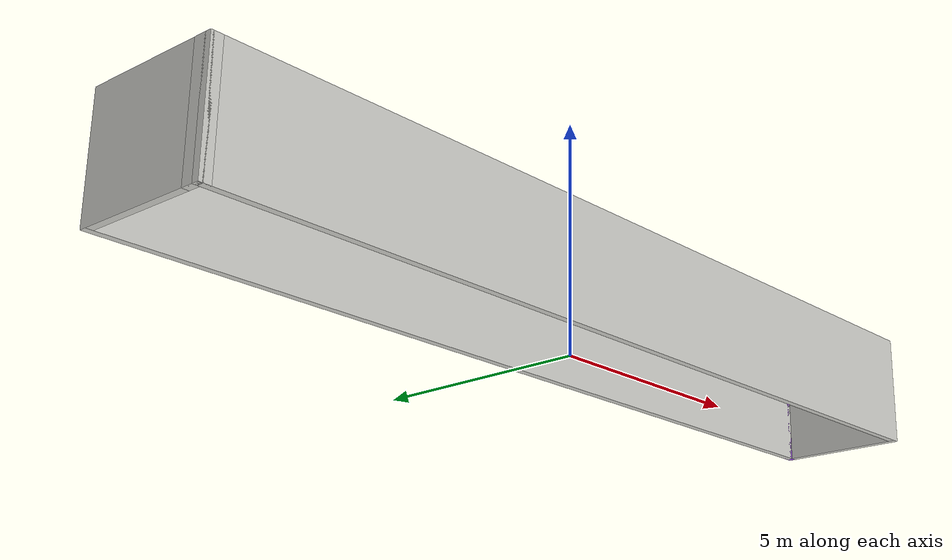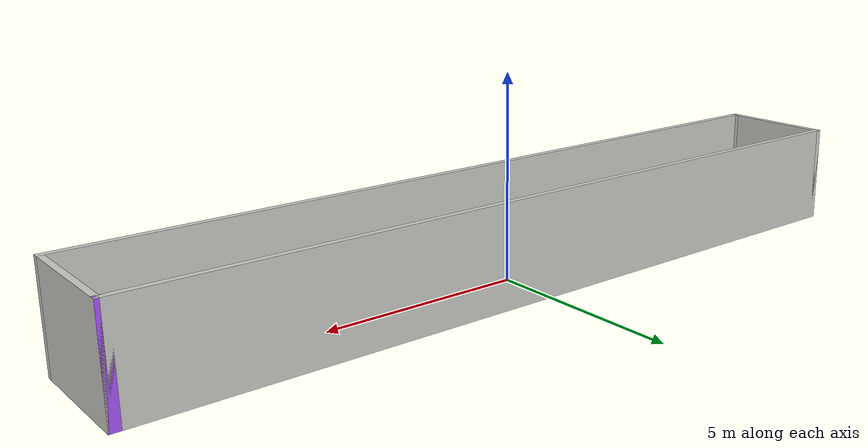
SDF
<?xml version='1.0'?>
<sdf version='1.6'>
  <model name='dqn'>
    <pose frame=''>0.084237 0.035985 0 0 -0 0</pose>
    <link name='Wall_10'>
      <collision name='Wall_10_Collision'>
        <geometry>
          <box>
            <size>20.25 0.15 2.5</size>
          </box>
        </geometry>
        <pose frame=''>0 0 1.25 0 -0 0</pose>
      </collision>
      <visual name='Wall_10_Visual'>
        <pose frame=''>0 0 1.25 0 -0 0</pose>
        <geometry>
          <box>
            <size>20.25 0.15 2.5</size>
          </box>
        </geometry>
        <material>
          <script>
            <uri>file://media/materials/scripts/gazebo.material</uri>
            <name>Gazebo/CeilingTiled</name>
          </script>
          <ambient>0.666667 0.333333 1 1</ambient>
        </material>
        <meta>
          <layer>0</layer>
        </meta>
      </visual>
      <pose frame=''>-0.05 1.425 0 0 -0 0</pose>
    </link>
    <link name='Wall_11'>
      <collision name='Wall_11_Collision'>
        <geometry>
          <box>
            <size>0.25 0.15 2.5</size>
          </box>
        </geometry>
        <pose frame=''>0 0 1.25 0 -0 0</pose>
      </collision>
      <visual name='Wall_11_Visual'>
        <pose frame=''>0 0 1.25 0 -0 0</pose>
        <geometry>
          <box>
            <size>0.25 0.15 2.5</size>
          </box>
        </geometry>
        <material>
          <script>
            <uri>file://media/materials/scripts/gazebo.material</uri>
            <name>Gazebo/Grey</name>
          </script>
          <ambient>0.666667 0.333333 1 1</ambient>
        </material>
        <meta>
          <layer>0</layer>
        </meta>
      </visual>
      <pose frame=''>10.05 1.425 0 0 -0 0</pose>
    </link>
    <link name='Wall_12'>
      <collision name='Wall_12_Collision'>
        <geometry>
          <box>
            <size>3 0.15 2.5</size>
          </box>
        </geometry>
        <pose frame=''>0 0 1.25 0 -0 0</pose>
      </collision>
      <visual name='Wall_12_Visual'>
        <pose frame=''>0 0 1.25 0 -0 0</pose>
        <geometry>
          <box>
            <size>3 0.15 2.5</size>
          </box>
        </geometry>
        <material>
          <script>
            <uri>file://media/materials/scripts/gazebo.material</uri>
            <name>Gazebo/CeilingTiled</name>
          </script>
          <ambient>0.666667 0.333333 1 1</ambient>
        </material>
        <meta>
          <layer>0</layer>
        </meta>
      </visual>
      <pose frame=''>10.1 0 0 0 -0 -1.5708</pose>
    </link>
    <link name='Wall_13'>
      <collision name='Wall_13_Collision'>
        <geometry>
          <box>
            <size>20.25 0.15 2.5</size>
          </box>
        </geometry>
        <pose frame=''>0 0 1.25 0 -0 0</pose>
      </collision>
      <visual name='Wall_13_Visual'>
        <pose frame=''>0 0 1.25 0 -0 0</pose>
        <geometry>
          <box>
            <size>20.25 0.15 2.5</size>
          </box>
        </geometry>
        <material>
          <script>
            <uri>file://media/materials/scripts/gazebo.material</uri>
            <name>Gazebo/CeilingTiled</name>
          </script>
          <ambient>0.666667 0.333333 1 1</ambient>
        </material>
        <meta>
          <layer>0</layer>
        </meta>
      </visual>
      <pose frame=''>0.05 -1.425 0 0 -0 3.14159</pose>
    </link>
    <link name='Wall_14'>
      <collision name='Wall_14_Collision'>
        <geometry>
          <box>
            <size>0.25 0.15 2.5</size>
          </box>
        </geometry>
        <pose frame=''>0 0 1.25 0 -0 0</pose>
      </collision>
      <visual name='Wall_14_Visual'>
        <pose frame=''>0 0 1.25 0 -0 0</pose>
        <geometry>
          <box>
            <size>0.25 0.15 2.5</size>
          </box>
        </geometry>
        <material>
          <script>
            <uri>file://media/materials/scripts/gazebo.material</uri>
            <name>Gazebo/CeilingTiled</name>
          </script>
          <ambient>0.666667 0.333333 1 1</ambient>
        </material>
        <meta>
          <layer>0</layer>
        </meta>
      </visual>
      <pose frame=''>-10.05 -1.425 0 0 -0 3.14159</pose>
    </link>
    <link name='Wall_15'>
      <collision name='Wall_15_Collision'>
        <geometry>
          <box>
            <size>0.4 0.15 2.5</size>
          </box>
        </geometry>
        <pose frame=''>0 0 1.25 0 -0 0</pose>
      </collision>
      <visual name='Wall_15_Visual'>
        <pose frame=''>0 0 1.25 0 -0 0</pose>
        <geometry>
          <box>
            <size>0.4 0.15 2.5</size>
          </box>
        </geometry>
        <material>
          <script>
            <uri>file://media/materials/scripts/gazebo.material</uri>
            <name>Gazebo/CeilingTiled</name>
          </script>
          <ambient>0.666667 0.333333 1 1</ambient>
        </material>
        <meta>
          <layer>0</layer>
        </meta>
      </visual>
      <pose frame=''>-10.1 -1.3 0 0 -0 1.5708</pose>
    </link>
    <link name='Wall_9'>
      <collision name='Wall_9_Collision'>
        <geometry>
          <box>
            <size>2.75 0.15 2.5</size>
          </box>
        </geometry>
        <pose frame=''>0 0 1.25 0 -0 0</pose>
      </collision>
      <visual name='Wall_9_Visual'>
        <pose frame=''>0 0 1.25 0 -0 0</pose>
        <geometry>
          <box>
            <size>2.75 0.15 2.5</size>
          </box>
        </geometry>
        <material>
          <script>
            <uri>file://media/materials/scripts/gazebo.material</uri>
            <name>Gazebo/CeilingTiled</name>
          </script>
          <ambient>0.666667 0.333333 1 1</ambient>
        </material>
        <meta>
          <layer>0</layer>
        </meta>
      </visual>
      <pose frame=''>-10.1 0.125 0 0 -0 1.5708</pose>
    </link>
    <static>1</static>
  </model>
</sdf>
